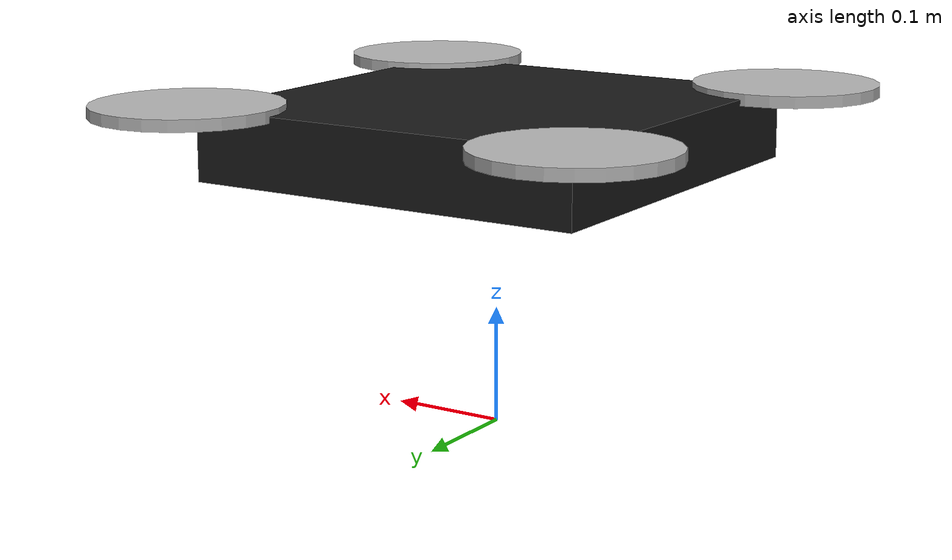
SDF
<?xml version="1.0" encoding="UTF-8"?>
<sdf version="1.9">
  <model name="gz_x500_base">
    <pose>0 0 0.25 0 0 0</pose>
    <self_collide>false</self_collide>
    <static>false</static>

    <plugin filename="gz-sim-odometry-publisher-system" name="gz::sim::systems::OdometryPublisher">
      <dimensions>3</dimensions>
    </plugin>

    <link name="base_link">
      <pose>0 0 0 0 0 0</pose>
      <inertial>
        <mass>1.8</mass>
        <inertia>
          <ixx>0.021</ixx>
          <ixy>0.0</ixy>
          <ixz>0.0</ixz>
          <iyy>0.021</iyy>
          <iyz>0.0</iyz>
          <izz>0.040</izz>
        </inertia>
      </inertial>

      <collision name="base_collision">
        <geometry>
          <box>
            <size>0.35 0.35 0.06</size>
          </box>
        </geometry>
      </collision>

      <visual name="base_visual">
        <geometry>
          <box>
            <size>0.35 0.35 0.06</size>
          </box>
        </geometry>
        <material>
          <ambient>0.1 0.1 0.1 1</ambient>
          <diffuse>0.1 0.1 0.1 1</diffuse>
          <specular>0.02 0.02 0.02 1</specular>
        </material>
      </visual>

      <sensor name="air_pressure_sensor" type="air_pressure">
        <always_on>1</always_on>
        <update_rate>50</update_rate>
      </sensor>

      <sensor name="magnetometer_sensor" type="magnetometer">
        <always_on>1</always_on>
        <update_rate>100</update_rate>
      </sensor>

      <sensor name="imu_sensor" type="imu">
        <always_on>1</always_on>
        <update_rate>250</update_rate>
      </sensor>

      <sensor name="navsat_sensor" type="navsat">
        <always_on>1</always_on>
        <update_rate>30</update_rate>
      </sensor>
    </link>

    <link name="rotor_0">
      <pose>0.18 -0.18 0.03 0 0 0</pose>
      <inertial>
        <mass>0.02</mass>
        <inertia>
          <ixx>0.00001</ixx>
          <iyy>0.00001</iyy>
          <izz>0.00002</izz>
        </inertia>
      </inertial>
      <visual name="rotor_0_visual">
        <geometry>
          <cylinder>
            <radius>0.08</radius>
            <length>0.01</length>
          </cylinder>
        </geometry>
      </visual>
    </link>

    <joint name="rotor_0_joint" type="revolute">
      <parent>base_link</parent>
      <child>rotor_0</child>
      <axis>
        <xyz>0 0 1</xyz>
        <limit>
          <lower>-1e16</lower>
          <upper>1e16</upper>
        </limit>
      </axis>
    </joint>

    <link name="rotor_1">
      <pose>-0.18 0.18 0.03 0 0 0</pose>
      <inertial>
        <mass>0.02</mass>
        <inertia>
          <ixx>0.00001</ixx>
          <iyy>0.00001</iyy>
          <izz>0.00002</izz>
        </inertia>
      </inertial>
      <visual name="rotor_1_visual">
        <geometry>
          <cylinder>
            <radius>0.08</radius>
            <length>0.01</length>
          </cylinder>
        </geometry>
      </visual>
    </link>

    <joint name="rotor_1_joint" type="revolute">
      <parent>base_link</parent>
      <child>rotor_1</child>
      <axis>
        <xyz>0 0 1</xyz>
        <limit>
          <lower>-1e16</lower>
          <upper>1e16</upper>
        </limit>
      </axis>
    </joint>

    <link name="rotor_2">
      <pose>0.18 0.18 0.03 0 0 0</pose>
      <inertial>
        <mass>0.02</mass>
        <inertia>
          <ixx>0.00001</ixx>
          <iyy>0.00001</iyy>
          <izz>0.00002</izz>
        </inertia>
      </inertial>
      <visual name="rotor_2_visual">
        <geometry>
          <cylinder>
            <radius>0.08</radius>
            <length>0.01</length>
          </cylinder>
        </geometry>
      </visual>
    </link>

    <joint name="rotor_2_joint" type="revolute">
      <parent>base_link</parent>
      <child>rotor_2</child>
      <axis>
        <xyz>0 0 1</xyz>
        <limit>
          <lower>-1e16</lower>
          <upper>1e16</upper>
        </limit>
      </axis>
    </joint>

    <link name="rotor_3">
      <pose>-0.18 -0.18 0.03 0 0 0</pose>
      <inertial>
        <mass>0.02</mass>
        <inertia>
          <ixx>0.00001</ixx>
          <iyy>0.00001</iyy>
          <izz>0.00002</izz>
        </inertia>
      </inertial>
      <visual name="rotor_3_visual">
        <geometry>
          <cylinder>
            <radius>0.08</radius>
            <length>0.01</length>
          </cylinder>
        </geometry>
      </visual>
    </link>

    <joint name="rotor_3_joint" type="revolute">
      <parent>base_link</parent>
      <child>rotor_3</child>
      <axis>
        <xyz>0 0 1</xyz>
        <limit>
          <lower>-1e16</lower>
          <upper>1e16</upper>
        </limit>
      </axis>
    </joint>

    <plugin filename="gz-sim-multicopter-motor-model-system" name="gz::sim::systems::MulticopterMotorModel">
      <jointName>rotor_0_joint</jointName>
      <linkName>rotor_0</linkName>
      <turningDirection>ccw</turningDirection>
      <timeConstantUp>0.0125</timeConstantUp>
      <timeConstantDown>0.025</timeConstantDown>
      <maxRotVelocity>1000.0</maxRotVelocity>
      <motorConstant>8.54858e-06</motorConstant>
      <momentConstant>0.016</momentConstant>
      <commandSubTopic>command/motor_speed</commandSubTopic>
      <motorNumber>0</motorNumber>
      <rotorDragCoefficient>8.06428e-05</rotorDragCoefficient>
      <rollingMomentCoefficient>1e-06</rollingMomentCoefficient>
      <rotorVelocitySlowdownSim>10</rotorVelocitySlowdownSim>
      <motorType>velocity</motorType>
    </plugin>

    <plugin filename="gz-sim-multicopter-motor-model-system" name="gz::sim::systems::MulticopterMotorModel">
      <jointName>rotor_1_joint</jointName>
      <linkName>rotor_1</linkName>
      <turningDirection>ccw</turningDirection>
      <timeConstantUp>0.0125</timeConstantUp>
      <timeConstantDown>0.025</timeConstantDown>
      <maxRotVelocity>1000.0</maxRotVelocity>
      <motorConstant>8.54858e-06</motorConstant>
      <momentConstant>0.016</momentConstant>
      <commandSubTopic>command/motor_speed</commandSubTopic>
      <motorNumber>1</motorNumber>
      <rotorDragCoefficient>8.06428e-05</rotorDragCoefficient>
      <rollingMomentCoefficient>1e-06</rollingMomentCoefficient>
      <rotorVelocitySlowdownSim>10</rotorVelocitySlowdownSim>
      <motorType>velocity</motorType>
    </plugin>

    <plugin filename="gz-sim-multicopter-motor-model-system" name="gz::sim::systems::MulticopterMotorModel">
      <jointName>rotor_2_joint</jointName>
      <linkName>rotor_2</linkName>
      <turningDirection>cw</turningDirection>
      <timeConstantUp>0.0125</timeConstantUp>
      <timeConstantDown>0.025</timeConstantDown>
      <maxRotVelocity>1000.0</maxRotVelocity>
      <motorConstant>8.54858e-06</motorConstant>
      <momentConstant>0.016</momentConstant>
      <commandSubTopic>command/motor_speed</commandSubTopic>
      <motorNumber>2</motorNumber>
      <rotorDragCoefficient>8.06428e-05</rotorDragCoefficient>
      <rollingMomentCoefficient>1e-06</rollingMomentCoefficient>
      <rotorVelocitySlowdownSim>10</rotorVelocitySlowdownSim>
      <motorType>velocity</motorType>
    </plugin>

    <plugin filename="gz-sim-multicopter-motor-model-system" name="gz::sim::systems::MulticopterMotorModel">
      <jointName>rotor_3_joint</jointName>
      <linkName>rotor_3</linkName>
      <turningDirection>cw</turningDirection>
      <timeConstantUp>0.0125</timeConstantUp>
      <timeConstantDown>0.025</timeConstantDown>
      <maxRotVelocity>1000.0</maxRotVelocity>
      <motorConstant>8.54858e-06</motorConstant>
      <momentConstant>0.016</momentConstant>
      <commandSubTopic>command/motor_speed</commandSubTopic>
      <motorNumber>3</motorNumber>
      <rotorDragCoefficient>8.06428e-05</rotorDragCoefficient>
      <rollingMomentCoefficient>1e-06</rollingMomentCoefficient>
      <rotorVelocitySlowdownSim>10</rotorVelocitySlowdownSim>
      <motorType>velocity</motorType>
    </plugin>
  </model>
</sdf>
